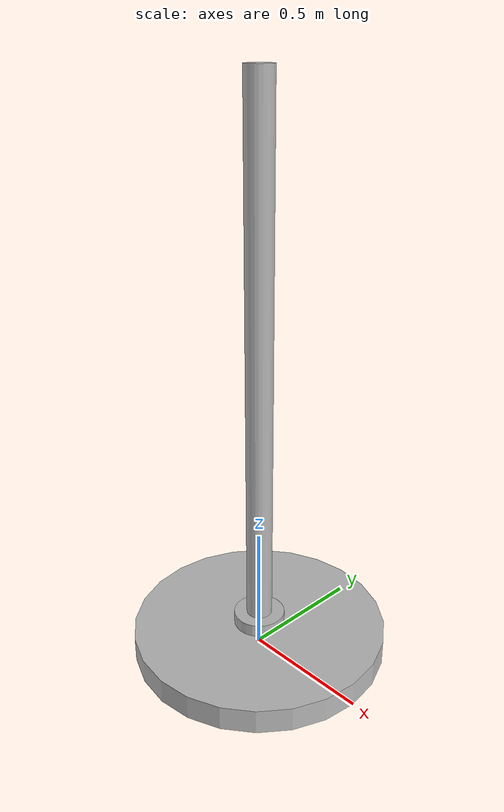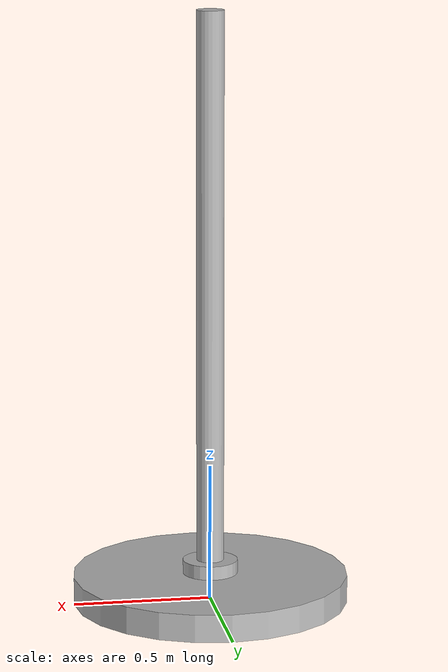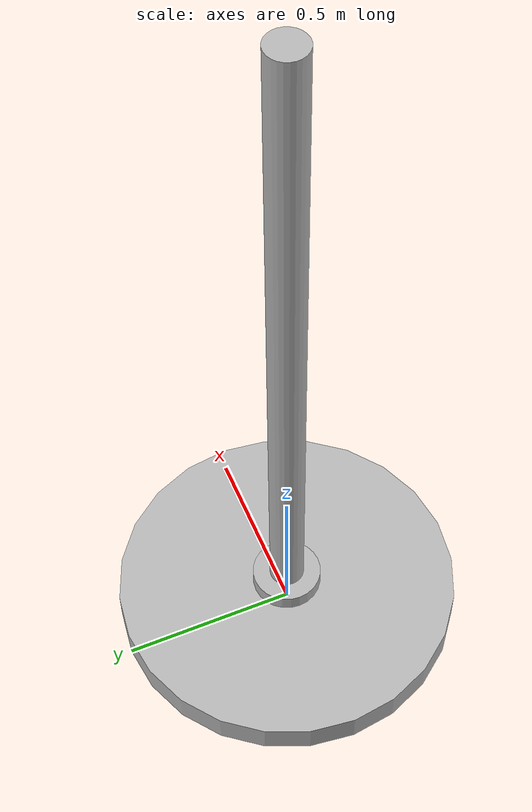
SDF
Micky G, [10.05.21 15:40]
<?xml version='1.0'?>
<sdf version='1.6'>
    <model name='arx'>
        <link name='base'>
            <pose>0 0 .05 0 0 0</pose>

            <collision name='collision'>
                <geometry>
                    <cylinder>
                        <radius>.5</radius>
                        <length>.1</length>
                    </cylinder>

                </geometry>
            </collision>
            <visual name='visual'>
                <geometry>
                    <cylinder>
                        <radius>.5</radius>
                        <length>.1</length>
                    </cylinder>

                </geometry>
            </visual>
        </link> -->

        <link name='arm1'>
            <pose>0 0 0.125 0 0 0</pose>

            <collision name='collision'>
                <geometry>
                    <cylinder>
                        <radius>.1</radius>
                        <length>.05</length>
                    </cylinder>
                </geometry>
            </collision>
            <visual name='visual'>
                <geometry>
                    <cylinder>
                        <radius>.1</radius>
                        <length>.05</length>
                    </cylinder>
                </geometry>
            </visual>
        </link>

        <link name='arm2'>
            <pose>0 0 1.15 0 0 0</pose>

            <collision name='collision'>
                <geometry>
                    <cylinder>
                        <radius>.05</radius>
                        <length>2</length>
                    </cylinder>
                </geometry>
            </collision>
            <visual name='visual'>
                <geometry>
                    <cylinder>
                        <radius>.05</radius>
                        <length>2</length>
                    </cylinder>
                </geometry>
            </visual>
        </link>

        <joint name="base_arm1" type="revolute">
            <parent>base</parent>
            <child>arm1</child>
            <pose>0 0 -0.025 0 0 0</pose>
            <axis>
                <xyz>0 0 1</xyz>
            </axis>
        </joint>

        <joint name="base_arm2" type="revolute">
            <parent>arm1</parent>
            <child>arm2</child>
            <pose>0 0 -1 0 0 0</pose>
            <axis>
                <xyz>0 1 0</xyz>
            </axis>
        </joint>
    </model>
</sdf>
